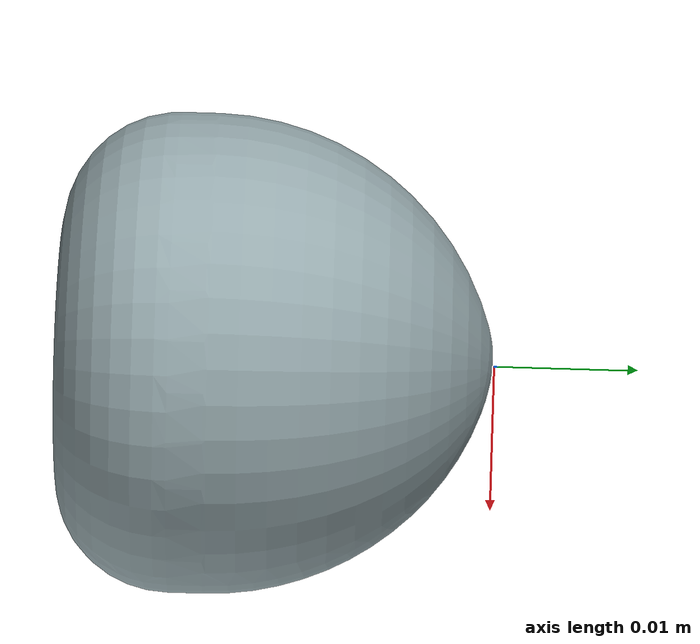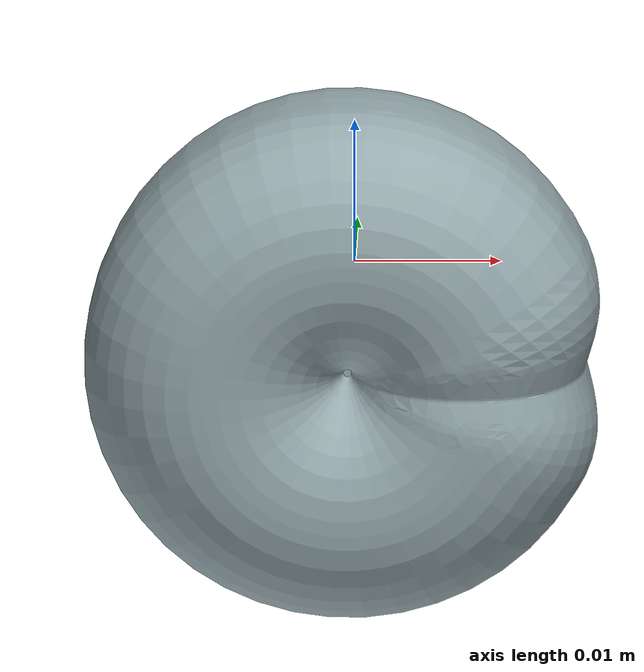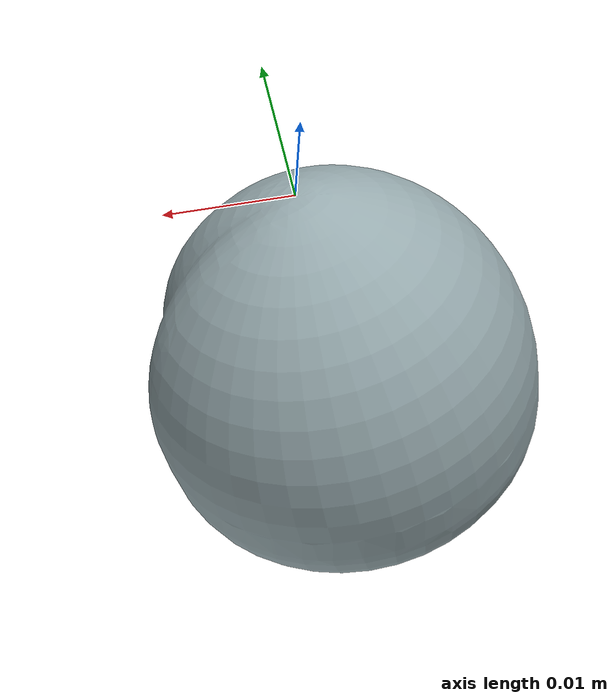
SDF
<?xml version="1.0"?>
<sdf version="1.7">
  <model name="peach">
    <link name="peach">
      <inertial>
        <pose>-0.00017415 4.6243e-08 0.017299 0 0 0</pose>
        <mass>0.019139</mass>
        <inertia>
          <ixx>2.1117e-06</ixx>
          <ixy>3.098e-12</ixy>
          <ixz>2.1589e-09</ixz>
          <iyy>2.0633e-06</iyy>
          <iyz>-8.191e-13</iyz>
          <izz>2.306e-06</izz>
        </inertia>
      </inertial>
      <visual name="peach_visual">
        <pose>0 0 0 0 0 0</pose>
        <geometry>
          <mesh>
            <uri>models://deli_world/peach/meshes/peach.STL</uri>
          </mesh>
        </geometry>
        <material>
          <ambient>0.59216 0.66667 0.68235 1</ambient>
          <diffuse>0.59216 0.66667 0.68235 1</diffuse>
          <specular>0 0 0 1</specular>
        </material>
      </visual>
      <collision name="peach_collision">
        <pose>0 0 0 0 0 0</pose>
        <geometry>
          <mesh>
            <uri>models://deli_world/peach/peach.STL</uri>
          </mesh>
        </geometry>
      </collision>
    </link>
  </model>
</sdf>
